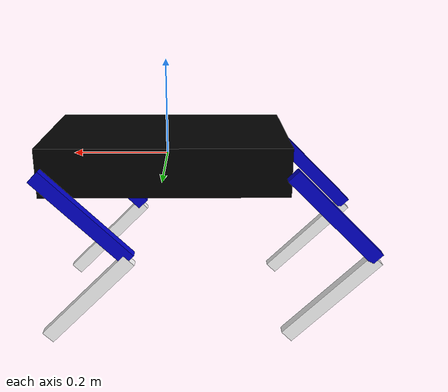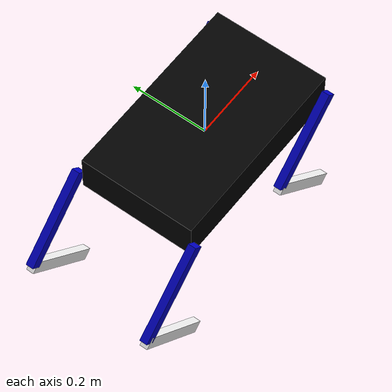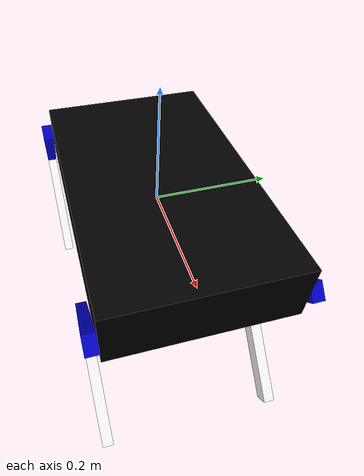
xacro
<?xml version="1.0"?>
<robot name="spacebok" xmlns:xacro="http://ros.org/wiki/xacro">

  <xacro:property name="body_length" value="0.5" />
  <xacro:property name="body_width" value="0.3" />
  <xacro:property name="body_height" value="0.1" />
  <xacro:property name="long_leg_size" value="0.25 0.02 0.03" />
  <xacro:property name="short_leg_size" value="0.1 0.2 0.03" />
  <xacro:property name="long_leg_length" value="0.25" />
  <xacro:property name="long_leg_width" value="0.02" />
  <xacro:property name="long_leg_height" value="0.05" />
  <xacro:property name="short_leg_length" value="0.1" />
  <xacro:property name="short_leg_width" value="0.02" />
  <xacro:property name="short_leg_height" value="0.05" />
  <xacro:property name="motor_diameter" value="0.1" />
  <xacro:property name="motor_width" value="0.2" />
  <xacro:property name="pi" value="3.141" />
  <xacro:property name="front" value="1" />
  <xacro:property name="back" value="1" />
  <xacro:property name="front" value="1" />
  <xacro:property name="front" value="1" />
  <xacro:property name="reduction" value="1" />

  <material name="blue">
    <color rgba="0 0 0.8 1"/>
  </material>

  <material name="black">
    <color rgba="0 0 0 1"/>
  </material>

  <material name="white">
    <color rgba="1 1 1 1"/>
  </material>

  <xacro:macro name="default_inertial" params="mass">
    <inertial>
      <mass value="${mass}" />
      <inertia ixx="1.0" ixy="0.0" ixz="0.0" iyy="1.0" iyz="0.0" izz="1.0" />
    </inertial>
  </xacro:macro>

  <link name="base_link">
    <visual>
      <geometry>
        <box size="${body_length} ${body_width} ${body_height}"/>
      </geometry>
      <material name="black"/>
    </visual>
    <collision>
      <geometry>
        <box size="${body_length} ${body_width} ${body_height}"/>
      </geometry>

    </collision>
    <xacro:default_inertial mass="5" />
  </link>

  <xacro:macro name="upper_leg_long" params="prefix suffix front_hind left_right">

    <link name="upper_leg_long_${prefix}_${suffix}">
      <visual>
        <geometry>
          <box size="${long_leg_size}"/>
        </geometry>
 	<material name="blue"/>
        <origin rpy="0 0 0" xyz="-${long_leg_length/2} 0 0"/>
      </visual>
      <collision>
        <geometry>
          <box size="${long_leg_size}"/>
        </geometry>
      </collision>
      <xacro:default_inertial mass="5" />
    </link>
    <joint name="${prefix}_${suffix}_joint_1" type="revolute">
      <axis xyz="0 1 0" />
      <limit effort="10.0" lower="-${pi/4}" upper="${pi/4}" velocity="0.5"/>
      <parent link="base_link"/>
      <child link="upper_leg_long_${prefix}_${suffix}"/>
      <origin xyz="${front_hind*body_length/2} ${left_right*body_width/2+left_right*long_leg_width/2} 0" rpy="0 -${pi/4} 0"/>
    </joint>

  </xacro:macro>

  <xacro:macro name="lower_leg_long" params="prefix suffix front_hind left_right">

    <link name="lower_leg_long_${prefix}_${suffix}">
      <visual>
        <geometry>
          <box size="${long_leg_size}"/>
        </geometry>
 	<material name="white"/>
        <origin rpy="0 0 0" xyz="-${long_leg_length/2} 0 0"/>
      </visual>
      <collision>
        <geometry>
          <box size="${long_leg_size}"/>
        </geometry>
      </collision>
      <xacro:default_inertial mass="5" />
    </link>
    <joint name="${prefix}_${suffix}_joint_2" type="revolute">
      <axis xyz="0 1 0" />
      <limit effort="10.0" lower="-${pi/4}" upper="${pi/4}" velocity="0.5"/>
      <parent link="upper_leg_long_${prefix}_${suffix}"/>
      <child link="lower_leg_long_${prefix}_${suffix}"/>
      <origin xyz="-${long_leg_length} 0 0" rpy="0 -${pi/2} 0"/>
    <origin rpy="0 -1.5705 0" xyz="-0.25 0 0"/>
    </joint>

  </xacro:macro>

  <xacro:upper_leg_long prefix="front" suffix="left" front_hind="1" left_right="1"/>
  <xacro:upper_leg_long prefix="front" suffix="right" front_hind="1" left_right="-1"/>
  <xacro:upper_leg_long prefix="hind" suffix="left" front_hind="-1" left_right="1"/>
  <xacro:upper_leg_long prefix="hind" suffix="right" front_hind="-1" left_right="-1"/>

  <xacro:lower_leg_long prefix="front" suffix="left" front_hind="-1" left_right="-1"/>
  <xacro:lower_leg_long prefix="front" suffix="right" front_hind="-1" left_right="-1"/>
  <xacro:lower_leg_long prefix="hind" suffix="left" front_hind="-1" left_right="-1"/>
  <xacro:lower_leg_long prefix="hind" suffix="right" front_hind="-1" left_right="-1"/>

  <xacro:macro name="transmission_macro" params="prefix suffix number">

    <transmission name="${prefix}_${suffix}_motor_${number}">
      <type>transmission_interface/SimpleTransmission</type>
      <actuator name="${prefix}_${suffix}_motor_${number}">
        <mechanicalReduction>1</mechanicalReduction>
      </actuator>
      <joint name="${prefix}_${suffix}_joint_${number}">
        <hardwareInterface>PositionJointInterface</hardwareInterface>
      </joint>
    </transmission>

  </xacro:macro>

  <xacro:transmission_macro prefix="front" suffix="left" number="1"/>
  <xacro:transmission_macro prefix="front" suffix="right" number="1"/>
  <xacro:transmission_macro prefix="hind" suffix="left" number="1"/>
  <xacro:transmission_macro prefix="hind" suffix="right" number="1"/>

  <xacro:transmission_macro prefix="front" suffix="left" number="2"/>
  <xacro:transmission_macro prefix="front" suffix="right" number="2"/>
  <xacro:transmission_macro prefix="hind" suffix="left" number="2"/>
  <xacro:transmission_macro prefix="hind" suffix="right" number="2"/>

  <gazebo>
    <plugin name="gazebo_ros_control" filename="libgazebo_ros_control.so">
      <robotNamespace>/</robotNamespace>
    </plugin>
  </gazebo>

</robot>
